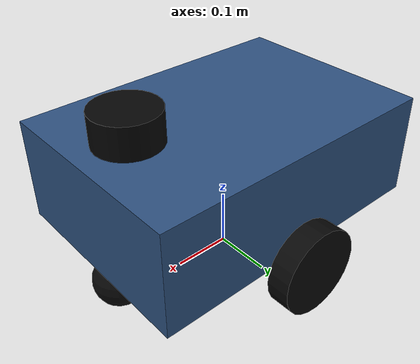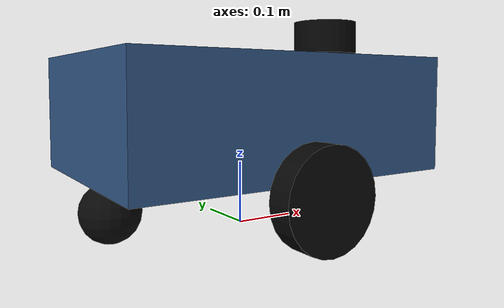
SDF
<?xml version="1.0" ?>
<sdf version="1.8">
  <!-- Adapted from gazebosim/ros_gz ros_gz_sim_demos/models/vehicle/model.sdf for Nav2 simulation. -->
  <model name="myworld2_diffbot">
    <pose>0 0 0 0 0 0</pose>

    <link name="base_footprint"/>

    <link name="base_link">
      <pose>0 0 0.18 0 0 0</pose>
      <inertial>
        <mass>4.0</mass>
        <inertia>
          <ixx>0.08</ixx>
          <ixy>0</ixy>
          <ixz>0</ixz>
          <iyy>0.12</iyy>
          <iyz>0</iyz>
          <izz>0.16</izz>
        </inertia>
      </inertial>
      <collision name="base_collision">
        <geometry>
          <box>
            <size>0.52 0.36 0.18</size>
          </box>
        </geometry>
      </collision>
      <visual name="base_visual">
        <geometry>
          <box>
            <size>0.52 0.36 0.18</size>
          </box>
        </geometry>
        <material>
          <ambient>0.18 0.32 0.50 1</ambient>
          <diffuse>0.18 0.32 0.50 1</diffuse>
          <specular>0.08 0.08 0.08 1</specular>
        </material>
      </visual>
    </link>

    <joint name="base_joint" type="fixed">
      <parent>base_footprint</parent>
      <child>base_link</child>
      <pose>0 0 0.18 0 0 0</pose>
    </joint>

    <link name="wheel_left_link">
      <pose>0 0.205 0.075 -1.5707 0 0</pose>
      <inertial>
        <mass>0.45</mass>
        <inertia>
          <ixx>0.0012</ixx>
          <ixy>0</ixy>
          <ixz>0</ixz>
          <iyy>0.0012</iyy>
          <iyz>0</iyz>
          <izz>0.0018</izz>
        </inertia>
      </inertial>
      <collision name="wheel_left_collision">
        <geometry>
          <cylinder>
            <radius>0.075</radius>
            <length>0.04</length>
          </cylinder>
        </geometry>
        <surface>
          <friction>
            <ode>
              <mu>100000</mu>
              <mu2>100000</mu2>
            </ode>
          </friction>
        </surface>
      </collision>
      <visual name="wheel_left_visual">
        <geometry>
          <cylinder>
            <radius>0.075</radius>
            <length>0.04</length>
          </cylinder>
        </geometry>
        <material>
          <ambient>0.03 0.03 0.03 1</ambient>
          <diffuse>0.03 0.03 0.03 1</diffuse>
        </material>
      </visual>
    </link>

    <link name="wheel_right_link">
      <pose>0 -0.205 0.075 -1.5707 0 0</pose>
      <inertial>
        <mass>0.45</mass>
        <inertia>
          <ixx>0.0012</ixx>
          <ixy>0</ixy>
          <ixz>0</ixz>
          <iyy>0.0012</iyy>
          <iyz>0</iyz>
          <izz>0.0018</izz>
        </inertia>
      </inertial>
      <collision name="wheel_right_collision">
        <geometry>
          <cylinder>
            <radius>0.075</radius>
            <length>0.04</length>
          </cylinder>
        </geometry>
        <surface>
          <friction>
            <ode>
              <mu>100000</mu>
              <mu2>100000</mu2>
            </ode>
          </friction>
        </surface>
      </collision>
      <visual name="wheel_right_visual">
        <geometry>
          <cylinder>
            <radius>0.075</radius>
            <length>0.04</length>
          </cylinder>
        </geometry>
        <material>
          <ambient>0.03 0.03 0.03 1</ambient>
          <diffuse>0.03 0.03 0.03 1</diffuse>
        </material>
      </visual>
    </link>

    <joint name="wheel_left_joint" type="revolute">
      <parent>base_link</parent>
      <child>wheel_left_link</child>
      <axis>
        <xyz>0 0 1</xyz>
        <limit>
          <lower>-1.79769e+308</lower>
          <upper>1.79769e+308</upper>
        </limit>
      </axis>
    </joint>

    <joint name="wheel_right_joint" type="revolute">
      <parent>base_link</parent>
      <child>wheel_right_link</child>
      <axis>
        <xyz>0 0 1</xyz>
        <limit>
          <lower>-1.79769e+308</lower>
          <upper>1.79769e+308</upper>
        </limit>
      </axis>
    </joint>

    <link name="rear_caster_link">
      <pose>-0.22 0 0.045 0 0 0</pose>
      <inertial>
        <mass>0.12</mass>
        <inertia>
          <ixx>0.0001</ixx>
          <ixy>0</ixy>
          <ixz>0</ixz>
          <iyy>0.0001</iyy>
          <iyz>0</iyz>
          <izz>0.0001</izz>
        </inertia>
      </inertial>
      <collision name="caster_collision">
        <geometry>
          <sphere>
            <radius>0.045</radius>
          </sphere>
        </geometry>
      </collision>
      <visual name="caster_visual">
        <geometry>
          <sphere>
            <radius>0.045</radius>
          </sphere>
        </geometry>
        <material>
          <ambient>0.03 0.03 0.03 1</ambient>
          <diffuse>0.03 0.03 0.03 1</diffuse>
        </material>
      </visual>
    </link>

    <joint name="rear_caster_joint" type="fixed">
      <parent>base_link</parent>
      <child>rear_caster_link</child>
    </joint>

    <link name="front_caster_link">
      <pose>0.22 0 0.045 0 0 0</pose>
      <inertial>
        <mass>0.12</mass>
        <inertia>
          <ixx>0.0001</ixx>
          <ixy>0</ixy>
          <ixz>0</ixz>
          <iyy>0.0001</iyy>
          <iyz>0</iyz>
          <izz>0.0001</izz>
        </inertia>
      </inertial>
      <collision name="front_caster_collision">
        <geometry>
          <sphere>
            <radius>0.045</radius>
          </sphere>
        </geometry>
      </collision>
      <visual name="front_caster_visual">
        <geometry>
          <sphere>
            <radius>0.045</radius>
          </sphere>
        </geometry>
        <material>
          <ambient>0.03 0.03 0.03 1</ambient>
          <diffuse>0.03 0.03 0.03 1</diffuse>
        </material>
      </visual>
    </link>

    <joint name="front_caster_joint" type="fixed">
      <parent>base_link</parent>
      <child>front_caster_link</child>
    </joint>

    <link name="base_scan">
      <pose>0.18 0 0.31 0 0 0</pose>
      <collision name="lidar_collision">
        <geometry>
          <cylinder>
            <radius>0.055</radius>
            <length>0.055</length>
          </cylinder>
        </geometry>
      </collision>
      <visual name="lidar_visual">
        <geometry>
          <cylinder>
            <radius>0.055</radius>
            <length>0.055</length>
          </cylinder>
        </geometry>
        <material>
          <ambient>0.02 0.02 0.02 1</ambient>
          <diffuse>0.02 0.02 0.02 1</diffuse>
        </material>
      </visual>
      <sensor name="gpu_lidar" type="gpu_lidar">
        <topic>scan</topic>
        <ignition_frame_id>base_scan</ignition_frame_id>
        <update_rate>10</update_rate>
        <lidar>
          <scan>
            <horizontal>
              <samples>720</samples>
              <resolution>1</resolution>
              <min_angle>-3.14159</min_angle>
              <max_angle>3.14159</max_angle>
            </horizontal>
          </scan>
          <range>
            <min>0.12</min>
            <max>10.0</max>
            <resolution>0.01</resolution>
          </range>
          <noise>
            <type>gaussian</type>
            <mean>0.0</mean>
            <stddev>0.01</stddev>
          </noise>
        </lidar>
        <always_on>true</always_on>
        <visualize>true</visualize>
      </sensor>
    </link>

    <joint name="lidar_joint" type="fixed">
      <parent>base_link</parent>
      <child>base_scan</child>
      <pose>0.18 0 0.31 0 0 0</pose>
    </joint>

    <link name="imu_link">
      <pose>0 0 0.26 0 0 0</pose>
      <sensor name="imu" type="imu">
        <always_on>true</always_on>
        <update_rate>100</update_rate>
        <topic>imu</topic>
        <ignition_frame_id>imu_link</ignition_frame_id>
      </sensor>
    </link>

    <joint name="imu_joint" type="fixed">
      <parent>base_link</parent>
      <child>imu_link</child>
      <pose>0 0 0.26 0 0 0</pose>
    </joint>

    <plugin
      filename="ignition-gazebo-diff-drive-system"
      name="ignition::gazebo::systems::DiffDrive">
      <left_joint>wheel_left_joint</left_joint>
      <right_joint>wheel_right_joint</right_joint>
      <wheel_separation>0.41</wheel_separation>
      <wheel_radius>0.075</wheel_radius>
      <topic>cmd_vel</topic>
      <max_linear_acceleration>1.0</max_linear_acceleration>
      <min_linear_acceleration>-1.0</min_linear_acceleration>
      <max_angular_acceleration>2.5</max_angular_acceleration>
      <min_angular_acceleration>-2.5</min_angular_acceleration>
      <max_linear_velocity>1.5</max_linear_velocity>
      <min_linear_velocity>-1.5</min_linear_velocity>
      <max_angular_velocity>1.5</max_angular_velocity>
      <min_angular_velocity>-1.5</min_angular_velocity>
    </plugin>

    <plugin
      filename="ignition-gazebo-odometry-publisher-system"
      name="ignition::gazebo::systems::OdometryPublisher">
      <odom_publish_frequency>100</odom_publish_frequency>
      <odom_topic>/odom</odom_topic>
      <odom_frame>odom</odom_frame>
      <robot_base_frame>base_footprint</robot_base_frame>
      <tf_topic>/odom/tf</tf_topic>
      <dimensions>2</dimensions>
    </plugin>

    <plugin
      filename="ignition-gazebo-joint-state-publisher-system"
      name="ignition::gazebo::systems::JointStatePublisher">
      <topic>joint_states</topic>
      <joint_name>wheel_left_joint</joint_name>
      <joint_name>wheel_right_joint</joint_name>
    </plugin>
  </model>
</sdf>
